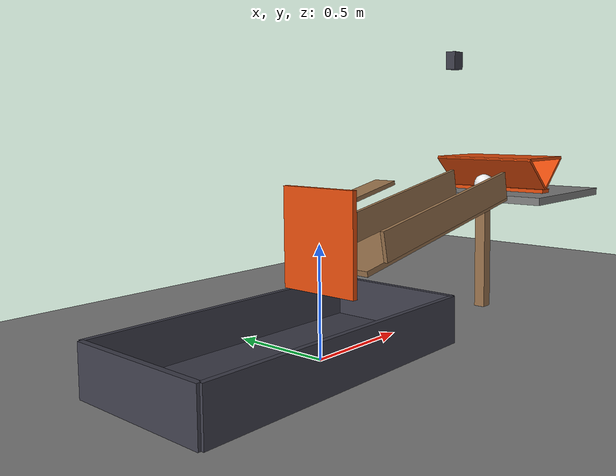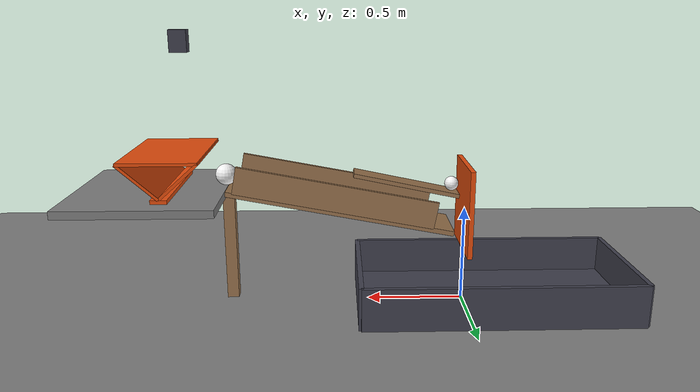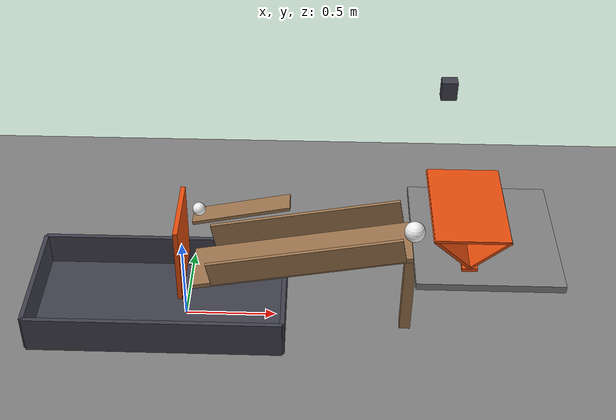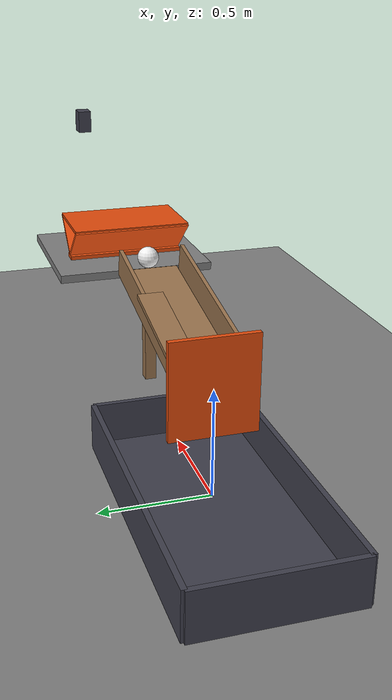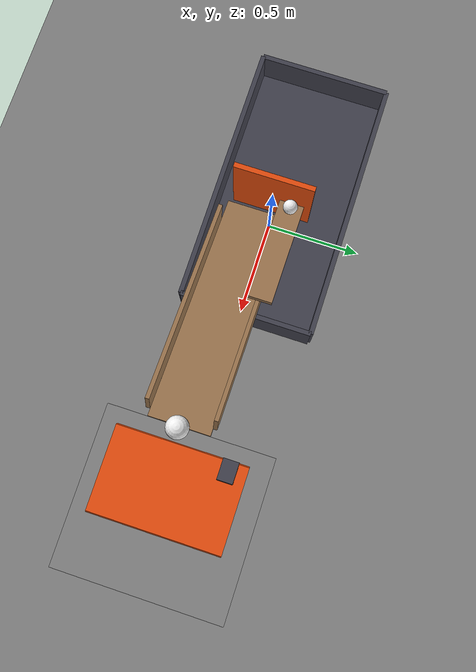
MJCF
<mujoco model="falling_weight_tips_wedge_and_releases_a_ball">
  <compiler angle="radian"/>
  <option timestep="0.002"/>
  <worldbody>
    <geom name="floor" type="plane" size="6 6 0.1" friction="0.8 0.005 0.002"/>
    <body name="starting shelf">
      <geom name="starting shelf" type="box" pos="1.6 0 0.6" size="0.375 0.4 0.02" friction="0.7 0.003 0.0002" solref="0.01 1"/>
    </body>
    <body name="ramp">
      <geom name="ramp_deck" type="box" pos="0.645 -0.06 0.4975" size="0.590339 0.15 0.0125" euler="0 2.95416 0" friction="0.6 0.003 0.0002" solref="0.01 1" rgba="0.6 0.45 0.3 1"/>
      <geom name="ramp_leg" type="box" pos="1.225 -0.06 0.30375" size="0.03 0.03 0.30375" friction="0.6 0.003 0.0002" solref="0.01 1" rgba="0.6 0.45 0.3 1"/>
    </body>
    <body name="ramp left rail">
      <geom name="ramp left rail" type="box" pos="0.6675 0.1 0.58575" size="0.516547 0.01 0.07" euler="0 2.95416 0" friction="0.3 0.001 0.0001" solref="0.01 1" rgba="0.6 0.45 0.3 1"/>
    </body>
    <body name="ramp right rail">
      <geom name="ramp right rail" type="box" pos="0.6675 -0.22 0.58575" size="0.516547 0.01 0.07" euler="0 2.95416 0" friction="0.3 0.001 0.0001" solref="0.01 1" rgba="0.6 0.45 0.3 1"/>
    </body>
    <body name="wedge" pos="1.5 0 0.81">
      <freejoint/>
      <geom name="wedge" type="box" pos="0 0 0" size="0.19 0.3 0.0075" mass="0.12" friction="0.9 0.005 0.001" solref="0.01 1" rgba="0.9 0.3 0.05 1"/>
      <geom name="wedge heel" type="box" pos="0 0 -0.18" size="0.04 0.3 0.01" mass="0.15" friction="0.9 0.005 0.001" solref="0.01 1" rgba="0.9 0.3 0.05 1"/>
      <geom name="wedge near face" type="box" pos="-0.095 0 -0.085" size="0.127475 0.3 0.0075" euler="0 0.7299 0" mass="0.1" friction="0.5 0.001 0.0001" solref="0.01 1" rgba="0.9 0.3 0.05 1"/>
      <geom name="wedge far face" type="box" pos="0.095 0 -0.085" size="0.127475 0.3 0.0075" euler="0 -0.7299 0" mass="0.1" friction="0.9 0.005 0.001" solref="0.01 1" rgba="0.9 0.3 0.05 1"/>
    </body>
    <body name="block" pos="1.37 0.23 1.3675">
      <freejoint/>
      <geom name="block" type="box" pos="0 0 0" size="0.04 0.03 0.05" mass="0.65" friction="0.9 0.005 0.001" solref="0.01 1" rgba="0.25 0.25 0.3 1"/>
    </body>
    <body name="ball1" pos="1.235 -0.06 0.675">
      <freejoint/>
      <geom name="ball1" type="sphere" pos="0 0 0" size="0.055" mass="0.2" condim="6" friction="0.6 0.003 0.0002" solref="0.01 1" rgba="0.95 0.95 0.95 1"/>
    </body>
    <body name="flap" pos="0 0 0.29">
      <joint name="release_hinge" type="hinge" pos="0 0 0" axis="0 1 0" limited="true" range="-1.48353 0.10472" damping="0.03"/>
      <geom name="flap" type="box" pos="0 0 0.225" size="0.0125 0.2 0.225" mass="0.4" friction="0.6 0.003 0.0004" solref="0.01 1" rgba="0.9 0.3 0.05 1"/>
    </body>
    <body name="ball2 guide">
      <geom name="ball2 guide" type="box" pos="0.32 0.11 0.665" size="0.265754 0.06 0.01" euler="0 2.93313 0" friction="0.6 0.003 0.0002" solref="0.01 1" rgba="0.6 0.45 0.3 1"/>
    </body>
    <body name="ball2" pos="0.092 0.11 0.663">
      <freejoint/>
      <geom name="ball2" type="sphere" pos="0 0 0" size="0.035" mass="0.025" condim="6" friction="0.6 0.003 0.0004" solref="0.01 1" rgba="0.95 0.95 0.95 1"/>
    </body>
    <body name="cup">
      <geom name="cup_base" type="box" pos="-0.15 0.04 0.015" size="0.7 0.35 0.015" friction="1 0.02 0.015" solref="0.01 1" rgba="0.25 0.25 0.3 1"/>
      <geom name="cup_near_wall" type="box" pos="-0.85 0.04 0.11" size="0.0125 0.35 0.11" friction="1 0.02 0.015" solref="0.01 1" rgba="0.25 0.25 0.3 1"/>
      <geom name="cup_far_wall" type="box" pos="0.55 0.04 0.11" size="0.0125 0.35 0.11" friction="1 0.02 0.015" solref="0.01 1" rgba="0.25 0.25 0.3 1"/>
      <geom name="cup_left_wall" type="box" pos="-0.15 0.39 0.11" size="0.7 0.0125 0.11" friction="1 0.02 0.015" solref="0.01 1" rgba="0.25 0.25 0.3 1"/>
      <geom name="cup_right_wall" type="box" pos="-0.15 -0.31 0.11" size="0.7 0.0125 0.11" friction="1 0.02 0.015" solref="0.01 1" rgba="0.25 0.25 0.3 1"/>
    </body>
  </worldbody>
  <keyframe>
    <key name="start" qpos="1.5 0 0.81 1 0 0 0 1.37 0.23 1.3675 1 0 0 0 1.235 -0.06 0.675 1 0 0 0 0.10472 0.092 0.11 0.663 1 0 0 0" qvel="0 0 0 0 0 0 0 0 0 0 0 0 0 0 0 0 0 0 0 0 0 0 0 0 0"/>
  </keyframe>
</mujoco>
